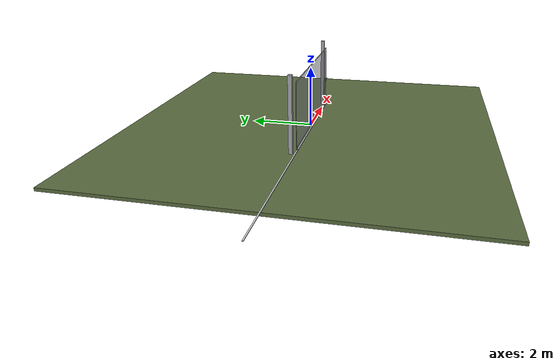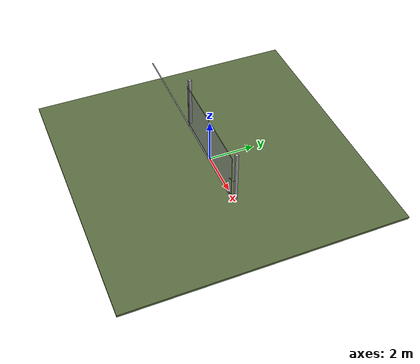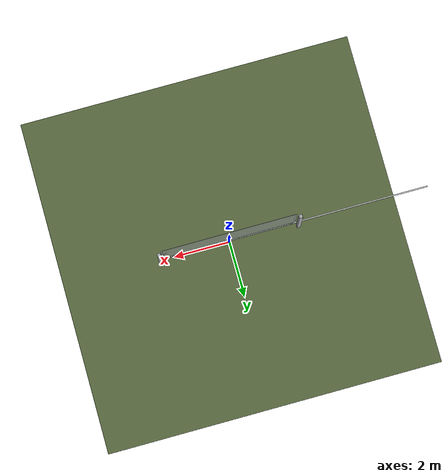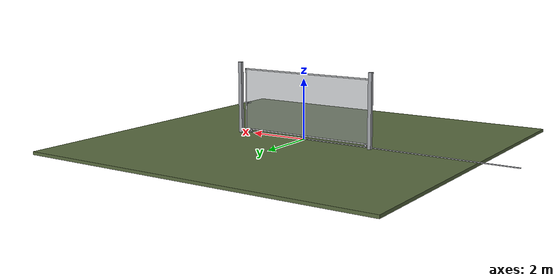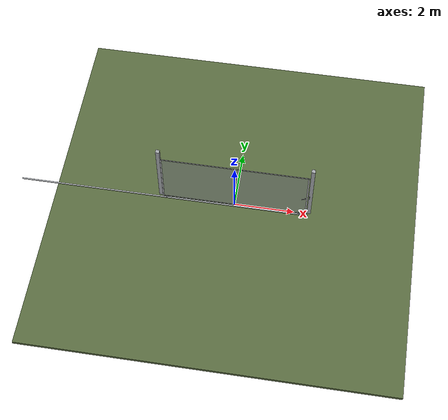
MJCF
<?xml version="1.0" ?>
<mujoco model="db0662_gate_sliding_full">
  <compiler angle="radian" meshdir="../../hardware" texturedir="../../textures" autolimits="true" inertiafromgeom="false"/>
  <option timestep="0.002" integrator="implicitfast" cone="elliptic" impratio="10" noslip_iterations="3">
    <flag multiccd="enable"/>
  </option>
  <size memory="16M"/>
  <default>
    <geom condim="4" solref="0.005 1" solimp="0.95 0.99 0.001"/>
    <joint solreflimit="0.005 1" solimplimit="0.95 0.99 0.001"/>
    <tendon solreflimit="0.005 1"/>
    <equality solref="0.002 1"/>
  </default>
  <visual>
    <headlight ambient="0.4 0.4 0.4" diffuse="0.7 0.7 0.7" specular="0.2 0.2 0.2"/>
    <quality shadowsize="4096"/>
    <map znear="0.01" zfar="60"/>
  </visual>
  <asset>
    <material name="mat_floor" rgba="0.35 0.42 0.25 1" specular="0.2" shininess="0.15" reflectance="0"/>
    <material name="mat_wall" rgba="0.78 0.76 0.7 1" specular="0.2" shininess="0.1" reflectance="0"/>
    <material name="mat_frame" rgba="0.65 0.66 0.68 1" specular="0.74" shininess="0.5" reflectance="0.36"/>
    <material name="mat_track" rgba="0.8 0.81 0.83 1" specular="0.8" shininess="0.6" reflectance="0.4"/>
    <material name="mat_leaf" rgba="0.7 0.71 0.72 1" specular="0.74" shininess="0.5" reflectance="0.36"/>
    <material name="mat_mesh_infill" rgba="0.6 0.62 0.64 0.55" specular="0.68" shininess="0.3" reflectance="0.1"/>
    <material name="mat_roller" rgba="0.65 0.66 0.68 1" specular="0.74" shininess="0.5" reflectance="0.36"/>
    <material name="mat_op_steel_galvanized" rgba="0.65 0.66 0.68 1" specular="0.74" shininess="0.5" reflectance="0.36"/>
    <material name="mat_padlock" rgba="0.85 0.66 0.3 1" specular="0.8" shininess="0.75" reflectance="0.4"/>
    <material name="mat_hook" rgba="0.75 0.76 0.77 1" specular="0.8" shininess="0.65" reflectance="0.4"/>
    <texture name="skybox" type="skybox" builtin="gradient" rgb1="0.6 0.7 0.85" rgb2="0.9 0.92 0.95" width="256" height="256"/>
  </asset>
  <worldbody>
    <light name="sun" pos="1.5 -2.5 4" dir="-0.3 0.5 -0.8" directional="true" diffuse="0.8 0.8 0.8" specular="0.3 0.3 0.3" castshadow="true"/>
    <light name="fill" pos="-1.5 2.5 3" dir="0.3 -0.5 -0.7" directional="true" diffuse="0.35 0.35 0.4" castshadow="false"/>
    <camera name="robot_view" pos="0 -5.171875 2.523125" xyaxes="1 0 0 0 0.26963 0.962964" fovy="52"/>
    <camera name="far_view" pos="0 5.171875 2.523125" xyaxes="-1 0 0 0 -0.26963 0.962964" fovy="52"/>
    <camera name="iso" pos="3.930625 -4.344375 3.350625" xyaxes="0.741536 0.670913 0 -0.242917 0.268487 0.932151" fovy="46"/>
    <camera name="detail_handle" pos="2.707 -1.1775 1.35" xyaxes="0.975133 0.221621 0 -0.065674 0.288965 0.955084" fovy="38"/>
    <geom name="floor" type="box" size="6 6 0.05" pos="0 0 -0.05" material="mat_floor" group="0" contype="1" conaffinity="1" friction="0.8 0.005 0.0001" density="2400"/>
    <geom name="post_l" type="box" size="0.06 0.06 1.2" pos="-2.485 0.08 1.2" material="mat_frame" group="0" contype="1" conaffinity="1" friction="0.6 0.005 0.0001" density="7850"/>
    <geom name="post_r" type="box" size="0.06 0.06 1.2" pos="2.485 0.08 1.2" material="mat_frame" group="0" contype="1" conaffinity="1" friction="0.6 0.005 0.0001" density="7850"/>
    <geom name="gate_rail" type="box" size="4.85 0.02 0.012" pos="-2.4 -0.06 0.012" material="mat_track" group="0" contype="1" conaffinity="1" friction="0.6 0.005 0.0001" density="2700"/>
    <geom name="leaf_staple_leg_n" type="box" size="0.003 0.0025 0.05475" pos="2.455 -0.03475 0.9875" quat="0.707107 0.707107 0 0" material="mat_op_steel_galvanized" group="0" contype="1" conaffinity="1" friction="0.6 0.005 0.0001" density="7800"/>
    <geom name="leaf_staple_leg_p" type="box" size="0.003 0.0025 0.05475" pos="2.455 -0.03475 1.0125" quat="0.707107 0.707107 0 0" material="mat_op_steel_galvanized" group="0" contype="1" conaffinity="1" friction="0.6 0.005 0.0001" density="7800"/>
    <geom name="leaf_staple_bridge" type="box" size="0.003 0.015 0.0025" pos="2.455 -0.087 1" quat="0.707107 0.707107 0 0" material="mat_op_steel_galvanized" group="0" contype="1" conaffinity="1" friction="0.6 0.005 0.0001" density="7800"/>
    <geom name="leaf_staple_base" type="box" size="0.016 0.021 0.001" pos="2.455 0.019 1" quat="0.707107 0.707107 0 0" material="mat_op_steel_galvanized" group="1" contype="0" conaffinity="0" density="7800"/>
    <site name="approach_point" pos="0 -1.5 0" quat="1 0 0 0" size="0.05" rgba="0.2 0.9 0.2 0.5" group="4"/>
    <site name="goal_point" pos="0 1.5 0" quat="1 0 0 0" size="0.05" rgba="0.2 0.9 0.2 0.5" group="4"/>
    <site name="door_plane_center" pos="0 0 1.075" quat="1 0 0 0" size="0.02" rgba="0.2 0.9 0.2 0.5" group="4"/>
    <body name="leaf" pos="0 -0.06 0">
      <inertial pos="0.006908 -0.000017 1.075934" mass="24.454723" quat="0.707106 -0.707108 -0.000278 -0.000292" diaginertia="9.828010524 50.976872484 60.804791561"/>
      <joint name="leaf_slide" type="slide" axis="-1 0 0" limited="true" range="0 4.8" damping="3.22942" frictionloss="12.056492" armature="0.5"/>
      <geom name="leaf_slab_col" type="box" size="2.4 0.0015 1.05" pos="0 0 1.13" material="mat_leaf" group="3" contype="1" conaffinity="1" rgba="0.8 0.3 0.3 0.25" friction="0.45 0.005 0.0001" density="1"/>
      <geom name="leaf_rail_b" type="box" size="2.4 0.0015 0.0225" pos="0 0 0.1025" material="mat_leaf" group="1" contype="0" conaffinity="0" density="1"/>
      <geom name="leaf_rail_t" type="box" size="2.4 0.0015 0.0225" pos="0 0 2.1575" material="mat_leaf" group="1" contype="0" conaffinity="0" density="1"/>
      <geom name="leaf_stile_h" type="box" size="0.0225 0.0015 1.05" pos="-2.3775 0 1.13" material="mat_leaf" group="1" contype="0" conaffinity="0" density="1"/>
      <geom name="leaf_stile_l" type="box" size="0.0225 0.0015 1.05" pos="2.3775 0 1.13" material="mat_leaf" group="1" contype="0" conaffinity="0" density="1"/>
      <geom name="leaf_mesh" type="box" size="2.355 0.0015 1.005" pos="0 0 1.13" material="mat_mesh_infill" group="1" contype="0" conaffinity="0" density="1"/>
      <geom name="leaf_roller_0" type="cylinder" size="0.04 0.008" pos="-2.26 0 0.064" quat="0.707107 -0.707107 0 0" material="mat_roller" group="1" contype="0" conaffinity="0" density="7850"/>
      <geom name="leaf_roller_1" type="cylinder" size="0.04 0.008" pos="2.18 0 0.064" quat="0.707107 -0.707107 0 0" material="mat_roller" group="1" contype="0" conaffinity="0" density="7850"/>
      <geom name="leaf_hasp_plate" type="box" size="0.024 0.0215 0.003" pos="2.32 -0.0045 1" quat="0.707107 0.707107 0 0" material="mat_op_steel_galvanized" group="1" contype="0" conaffinity="0" density="7800"/>
      <site name="leaf_edge_mid" pos="2.4 0 1.13" quat="1 0 0 0" size="0.02" rgba="0.2 0.9 0.2 0.5" group="4"/>
      <body name="leaf_hasp" pos="2.34 -0.0075 1">
        <inertial pos="-0.054811 -0.017469 0" mass="0.133677" quat="0.696092 -0.696092 -0.12432 0.12432" diaginertia="0.000015032 0.000260484 0.000274978"/>
        <joint name="leaf_hasp_hinge" type="hinge" axis="0 0 -1" limited="true" range="0 2.9" damping="0.02" frictionloss="0.05" armature="0.005" ref="2.8"/>
        <geom name="leaf_hasp_strap" type="box" size="0.0685 0.0175 0.0015" pos="-0.065045 -0.021533 0" quat="0.120185 0.120185 -0.696818 -0.696818" material="mat_op_steel_galvanized" group="0" contype="1" conaffinity="1" friction="0.6 0.005 0.0001" density="7800"/>
        <geom name="leaf_hasp_knuckle" type="cylinder" size="0.0045 0.0215" pos="-0.00134 0.003769 0" quat="0 0.169967 -0.98545 0" material="mat_op_steel_galvanized" group="1" contype="0" conaffinity="0" density="7850"/>
        <site name="leaf_hasp_grip" pos="-0.11359 -0.029771 0" quat="0.169967 0 0 -0.98545" size="0.01" rgba="0.2 0.9 0.2 0.5" group="4"/>
      </body>
    </body>
  </worldbody>
  <sensor>
    <jointpos name="leaf_slide_pos" joint="leaf_slide"/>
    <jointvel name="leaf_slide_vel" joint="leaf_slide"/>
    <jointpos name="leaf_hasp_hinge_pos" joint="leaf_hasp_hinge"/>
    <jointvel name="leaf_hasp_hinge_vel" joint="leaf_hasp_hinge"/>
  </sensor>
</mujoco>
